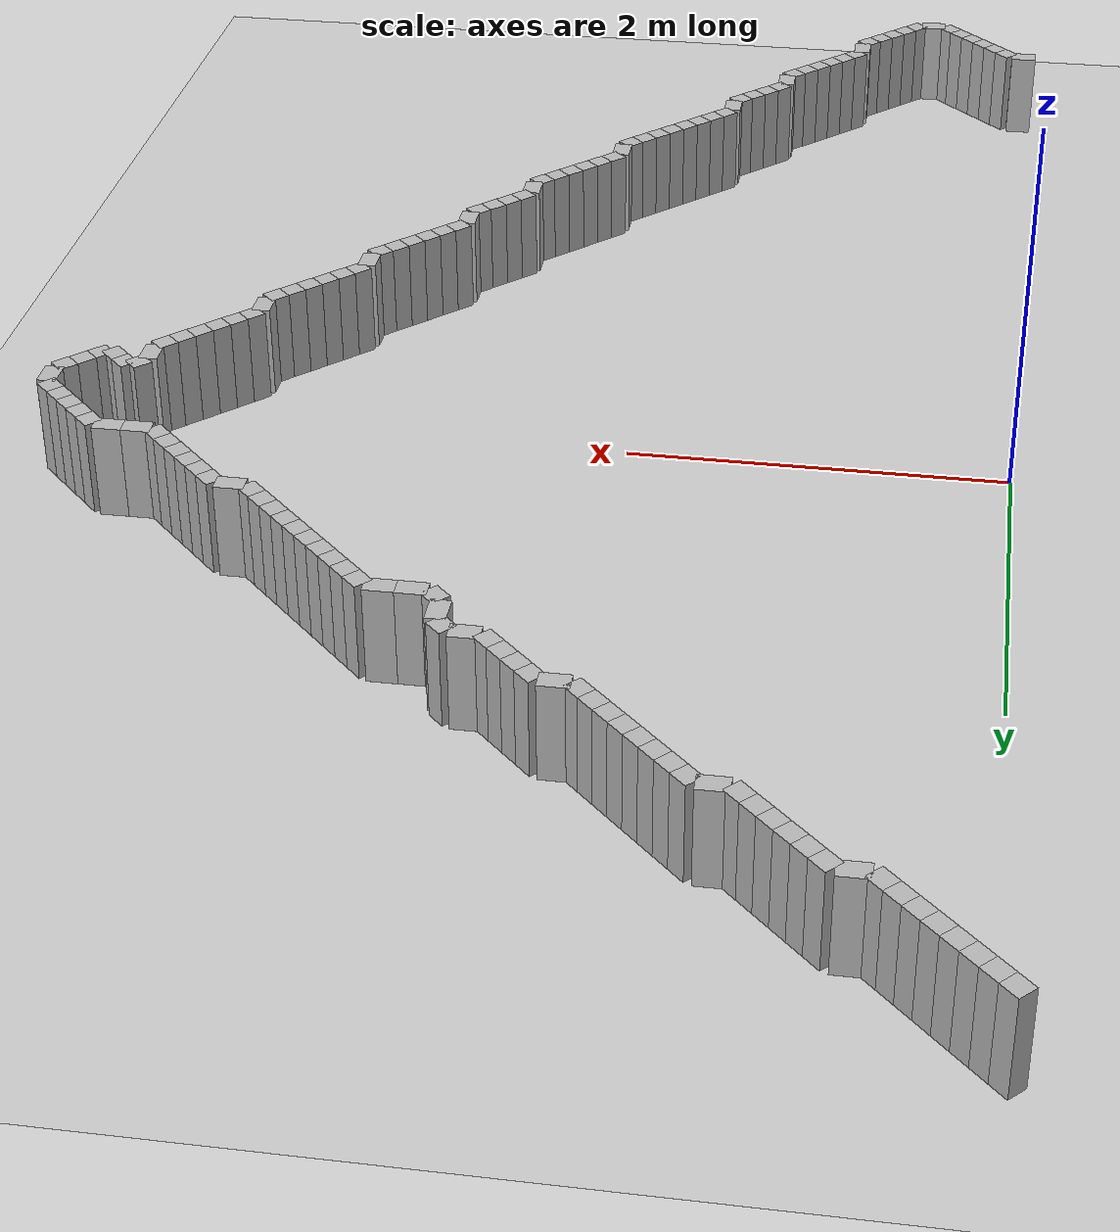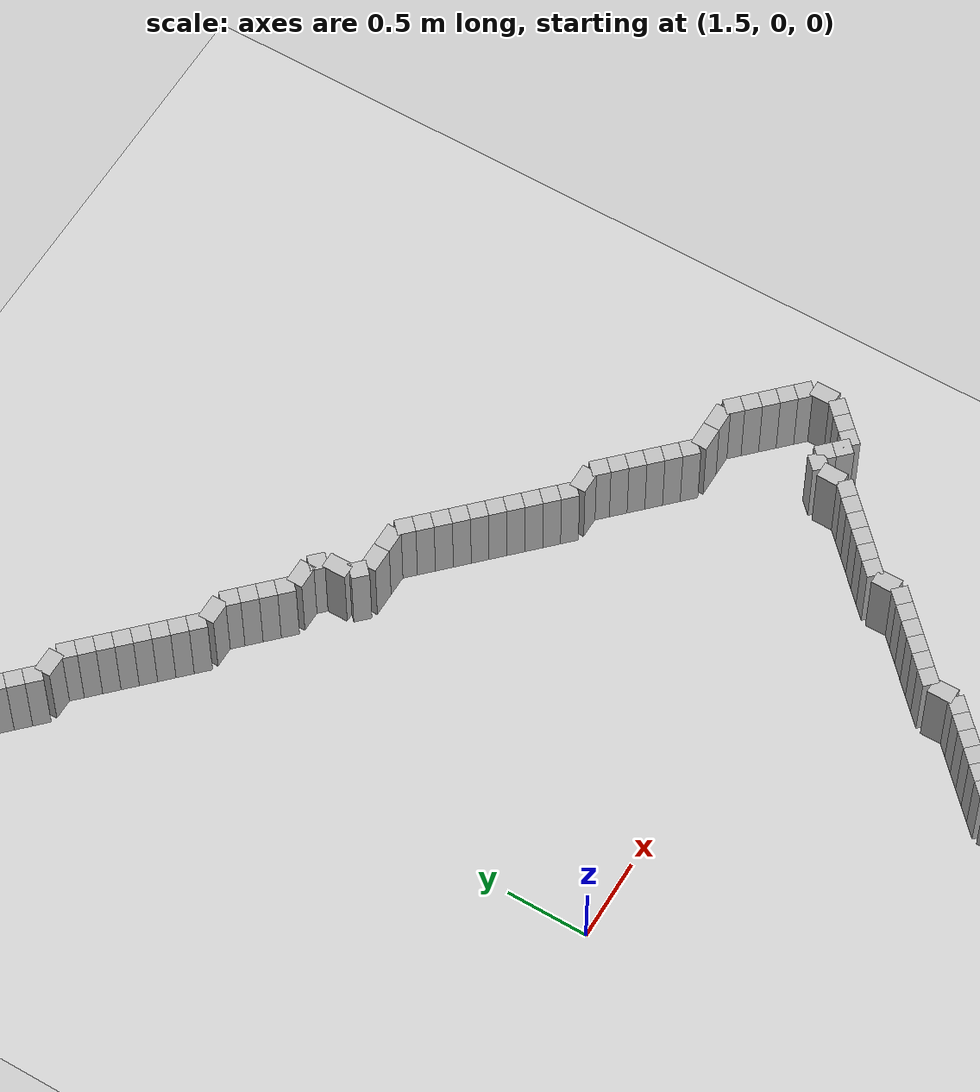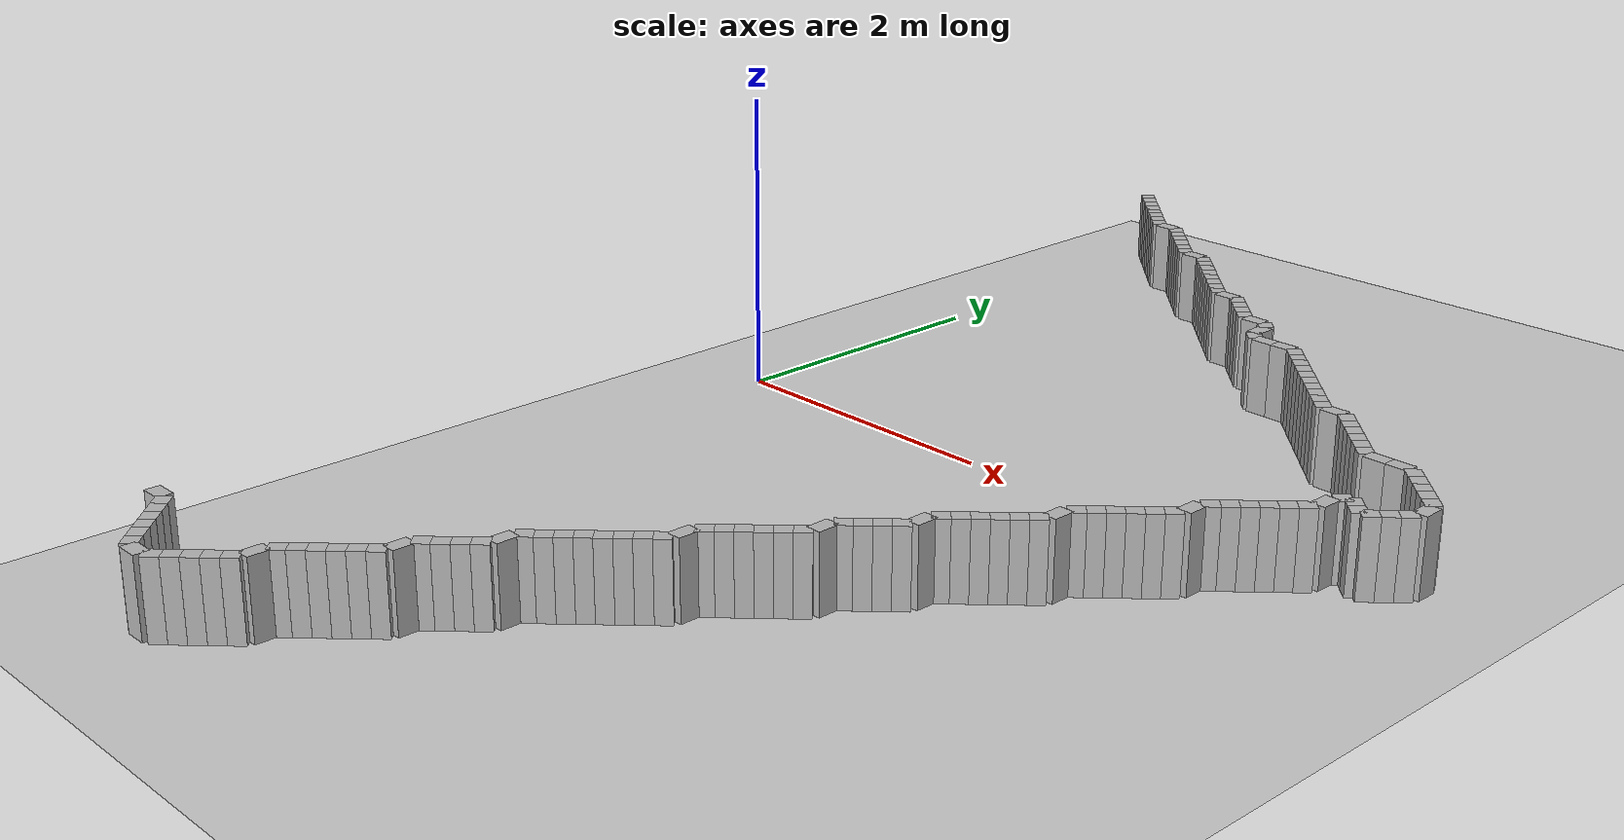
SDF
<sdf version="1.6">
 <world name="default">
  <include><uri>model://ground_plane</uri></include>
  <include><uri>model://sun</uri></include>
  <model name="wall_0">
   <static>true</static>
   <pose>0.4875 -4.9125 0 0 0 2.3562</pose>
   <link name="link">
    <visual name="vis"><geometry><box><size>0.1061 0.10 1.00</size></box></geometry></visual>
    <collision name="col"><geometry><box><size>0.1061 0.10 1.00</size></box></geometry></collision>
   </link>
  </model>
  <model name="wall_1">
   <static>true</static>
   <pose>0.4125 -4.8375 0 0 0 2.3562</pose>
   <link name="link">
    <visual name="vis"><geometry><box><size>0.1061 0.10 1.00</size></box></geometry></visual>
    <collision name="col"><geometry><box><size>0.1061 0.10 1.00</size></box></geometry></collision>
   </link>
  </model>
  <model name="wall_2">
   <static>true</static>
   <pose>0.3375 -4.7625 0 0 0 2.3562</pose>
   <link name="link">
    <visual name="vis"><geometry><box><size>0.1061 0.10 1.00</size></box></geometry></visual>
    <collision name="col"><geometry><box><size>0.1061 0.10 1.00</size></box></geometry></collision>
   </link>
  </model>
  <model name="wall_3">
   <static>true</static>
   <pose>0.2625 -4.6875 0 0 0 2.3562</pose>
   <link name="link">
    <visual name="vis"><geometry><box><size>0.1061 0.10 1.00</size></box></geometry></visual>
    <collision name="col"><geometry><box><size>0.1061 0.10 1.00</size></box></geometry></collision>
   </link>
  </model>
  <model name="wall_4">
   <static>true</static>
   <pose>0.1875 -4.6125 0 0 0 2.3562</pose>
   <link name="link">
    <visual name="vis"><geometry><box><size>0.1061 0.10 1.00</size></box></geometry></visual>
    <collision name="col"><geometry><box><size>0.1061 0.10 1.00</size></box></geometry></collision>
   </link>
  </model>
  <model name="wall_5">
   <static>true</static>
   <pose>0.1125 -4.5375 0 0 0 2.3562</pose>
   <link name="link">
    <visual name="vis"><geometry><box><size>0.1061 0.10 1.00</size></box></geometry></visual>
    <collision name="col"><geometry><box><size>0.1061 0.10 1.00</size></box></geometry></collision>
   </link>
  </model>
  <model name="wall_6">
   <static>true</static>
   <pose>0.0000 -4.5000 0 0 0 3.1416</pose>
   <link name="link">
    <visual name="vis"><geometry><box><size>0.1500 0.10 1.00</size></box></geometry></visual>
    <collision name="col"><geometry><box><size>0.1500 0.10 1.00</size></box></geometry></collision>
   </link>
  </model>
  <model name="wall_137">
   <static>true</static>
   <pose>-0.0375 4.3125 0 0 0 -0.7854</pose>
   <link name="link">
    <visual name="vis"><geometry><box><size>0.1061 0.10 1.00</size></box></geometry></visual>
    <collision name="col"><geometry><box><size>0.1061 0.10 1.00</size></box></geometry></collision>
   </link>
  </model>
  <model name="wall_138">
   <static>true</static>
   <pose>0.0375 4.2375 0 0 0 -0.7854</pose>
   <link name="link">
    <visual name="vis"><geometry><box><size>0.1061 0.10 1.00</size></box></geometry></visual>
    <collision name="col"><geometry><box><size>0.1061 0.10 1.00</size></box></geometry></collision>
   </link>
  </model>
  <model name="wall_139">
   <static>true</static>
   <pose>0.1125 4.1625 0 0 0 -0.7854</pose>
   <link name="link">
    <visual name="vis"><geometry><box><size>0.1061 0.10 1.00</size></box></geometry></visual>
    <collision name="col"><geometry><box><size>0.1061 0.10 1.00</size></box></geometry></collision>
   </link>
  </model>
  <model name="wall_140">
   <static>true</static>
   <pose>0.1875 4.0875 0 0 0 -0.7854</pose>
   <link name="link">
    <visual name="vis"><geometry><box><size>0.1061 0.10 1.00</size></box></geometry></visual>
    <collision name="col"><geometry><box><size>0.1061 0.10 1.00</size></box></geometry></collision>
   </link>
  </model>
  <model name="wall_141">
   <static>true</static>
   <pose>0.2625 4.0125 0 0 0 -0.7854</pose>
   <link name="link">
    <visual name="vis"><geometry><box><size>0.1061 0.10 1.00</size></box></geometry></visual>
    <collision name="col"><geometry><box><size>0.1061 0.10 1.00</size></box></geometry></collision>
   </link>
  </model>
  <model name="wall_142">
   <static>true</static>
   <pose>0.3375 3.9375 0 0 0 -0.7854</pose>
   <link name="link">
    <visual name="vis"><geometry><box><size>0.1061 0.10 1.00</size></box></geometry></visual>
    <collision name="col"><geometry><box><size>0.1061 0.10 1.00</size></box></geometry></collision>
   </link>
  </model>
  <model name="wall_143">
   <static>true</static>
   <pose>0.4125 3.8625 0 0 0 -0.7854</pose>
   <link name="link">
    <visual name="vis"><geometry><box><size>0.1061 0.10 1.00</size></box></geometry></visual>
    <collision name="col"><geometry><box><size>0.1061 0.10 1.00</size></box></geometry></collision>
   </link>
  </model>
  <model name="wall_144">
   <static>true</static>
   <pose>0.4875 3.7875 0 0 0 -0.7854</pose>
   <link name="link">
    <visual name="vis"><geometry><box><size>0.1061 0.10 1.00</size></box></geometry></visual>
    <collision name="col"><geometry><box><size>0.1061 0.10 1.00</size></box></geometry></collision>
   </link>
  </model>
  <model name="wall_145">
   <static>true</static>
   <pose>0.6000 3.7500 0 0 0 0.0000</pose>
   <link name="link">
    <visual name="vis"><geometry><box><size>0.1500 0.10 1.00</size></box></geometry></visual>
    <collision name="col"><geometry><box><size>0.1500 0.10 1.00</size></box></geometry></collision>
   </link>
  </model>
  <model name="wall_146">
   <static>true</static>
   <pose>0.7125 3.7125 0 0 0 -0.7854</pose>
   <link name="link">
    <visual name="vis"><geometry><box><size>0.1061 0.10 1.00</size></box></geometry></visual>
    <collision name="col"><geometry><box><size>0.1061 0.10 1.00</size></box></geometry></collision>
   </link>
  </model>
  <model name="wall_147">
   <static>true</static>
   <pose>0.7875 3.6375 0 0 0 -0.7854</pose>
   <link name="link">
    <visual name="vis"><geometry><box><size>0.1061 0.10 1.00</size></box></geometry></visual>
    <collision name="col"><geometry><box><size>0.1061 0.10 1.00</size></box></geometry></collision>
   </link>
  </model>
  <model name="wall_148">
   <static>true</static>
   <pose>0.8625 3.5625 0 0 0 -0.7854</pose>
   <link name="link">
    <visual name="vis"><geometry><box><size>0.1061 0.10 1.00</size></box></geometry></visual>
    <collision name="col"><geometry><box><size>0.1061 0.10 1.00</size></box></geometry></collision>
   </link>
  </model>
  <model name="wall_149">
   <static>true</static>
   <pose>0.9375 3.4875 0 0 0 -0.7854</pose>
   <link name="link">
    <visual name="vis"><geometry><box><size>0.1061 0.10 1.00</size></box></geometry></visual>
    <collision name="col"><geometry><box><size>0.1061 0.10 1.00</size></box></geometry></collision>
   </link>
  </model>
  <model name="wall_150">
   <static>true</static>
   <pose>1.0125 3.4125 0 0 0 -0.7854</pose>
   <link name="link">
    <visual name="vis"><geometry><box><size>0.1061 0.10 1.00</size></box></geometry></visual>
    <collision name="col"><geometry><box><size>0.1061 0.10 1.00</size></box></geometry></collision>
   </link>
  </model>
  <model name="wall_151">
   <static>true</static>
   <pose>1.0875 3.3375 0 0 0 -0.7854</pose>
   <link name="link">
    <visual name="vis"><geometry><box><size>0.1061 0.10 1.00</size></box></geometry></visual>
    <collision name="col"><geometry><box><size>0.1061 0.10 1.00</size></box></geometry></collision>
   </link>
  </model>
  <model name="wall_152">
   <static>true</static>
   <pose>1.2000 3.3000 0 0 0 0.0000</pose>
   <link name="link">
    <visual name="vis"><geometry><box><size>0.1500 0.10 1.00</size></box></geometry></visual>
    <collision name="col"><geometry><box><size>0.1500 0.10 1.00</size></box></geometry></collision>
   </link>
  </model>
  <model name="wall_153">
   <static>true</static>
   <pose>1.3125 3.2625 0 0 0 -0.7854</pose>
   <link name="link">
    <visual name="vis"><geometry><box><size>0.1061 0.10 1.00</size></box></geometry></visual>
    <collision name="col"><geometry><box><size>0.1061 0.10 1.00</size></box></geometry></collision>
   </link>
  </model>
  <model name="wall_154">
   <static>true</static>
   <pose>1.3875 3.1875 0 0 0 -0.7854</pose>
   <link name="link">
    <visual name="vis"><geometry><box><size>0.1061 0.10 1.00</size></box></geometry></visual>
    <collision name="col"><geometry><box><size>0.1061 0.10 1.00</size></box></geometry></collision>
   </link>
  </model>
  <model name="wall_155">
   <static>true</static>
   <pose>1.4625 3.1125 0 0 0 -0.7854</pose>
   <link name="link">
    <visual name="vis"><geometry><box><size>0.1061 0.10 1.00</size></box></geometry></visual>
    <collision name="col"><geometry><box><size>0.1061 0.10 1.00</size></box></geometry></collision>
   </link>
  </model>
  <model name="wall_156">
   <static>true</static>
   <pose>1.5375 3.0375 0 0 0 -0.7854</pose>
   <link name="link">
    <visual name="vis"><geometry><box><size>0.1061 0.10 1.00</size></box></geometry></visual>
    <collision name="col"><geometry><box><size>0.1061 0.10 1.00</size></box></geometry></collision>
   </link>
  </model>
  <model name="wall_157">
   <static>true</static>
   <pose>1.6125 2.9625 0 0 0 -0.7854</pose>
   <link name="link">
    <visual name="vis"><geometry><box><size>0.1061 0.10 1.00</size></box></geometry></visual>
    <collision name="col"><geometry><box><size>0.1061 0.10 1.00</size></box></geometry></collision>
   </link>
  </model>
  <model name="wall_158">
   <static>true</static>
   <pose>1.6875 2.8875 0 0 0 -0.7854</pose>
   <link name="link">
    <visual name="vis"><geometry><box><size>0.1061 0.10 1.00</size></box></geometry></visual>
    <collision name="col"><geometry><box><size>0.1061 0.10 1.00</size></box></geometry></collision>
   </link>
  </model>
  <model name="wall_159">
   <static>true</static>
   <pose>1.7625 2.8125 0 0 0 -0.7854</pose>
   <link name="link">
    <visual name="vis"><geometry><box><size>0.1061 0.10 1.00</size></box></geometry></visual>
    <collision name="col"><geometry><box><size>0.1061 0.10 1.00</size></box></geometry></collision>
   </link>
  </model>
  <model name="wall_160">
   <static>true</static>
   <pose>1.8375 2.7375 0 0 0 -0.7854</pose>
   <link name="link">
    <visual name="vis"><geometry><box><size>0.1061 0.10 1.00</size></box></geometry></visual>
    <collision name="col"><geometry><box><size>0.1061 0.10 1.00</size></box></geometry></collision>
   </link>
  </model>
  <model name="wall_161">
   <static>true</static>
   <pose>1.9500 2.7000 0 0 0 0.0000</pose>
   <link name="link">
    <visual name="vis"><geometry><box><size>0.1500 0.10 1.00</size></box></geometry></visual>
    <collision name="col"><geometry><box><size>0.1500 0.10 1.00</size></box></geometry></collision>
   </link>
  </model>
  <model name="wall_162">
   <static>true</static>
   <pose>2.0625 2.6625 0 0 0 -0.7854</pose>
   <link name="link">
    <visual name="vis"><geometry><box><size>0.1061 0.10 1.00</size></box></geometry></visual>
    <collision name="col"><geometry><box><size>0.1061 0.10 1.00</size></box></geometry></collision>
   </link>
  </model>
  <model name="wall_163">
   <static>true</static>
   <pose>2.1375 2.5875 0 0 0 -0.7854</pose>
   <link name="link">
    <visual name="vis"><geometry><box><size>0.1061 0.10 1.00</size></box></geometry></visual>
    <collision name="col"><geometry><box><size>0.1061 0.10 1.00</size></box></geometry></collision>
   </link>
  </model>
  <model name="wall_164">
   <static>true</static>
   <pose>2.2125 2.5125 0 0 0 -0.7854</pose>
   <link name="link">
    <visual name="vis"><geometry><box><size>0.1061 0.10 1.00</size></box></geometry></visual>
    <collision name="col"><geometry><box><size>0.1061 0.10 1.00</size></box></geometry></collision>
   </link>
  </model>
  <model name="wall_165">
   <static>true</static>
   <pose>2.2875 2.4375 0 0 0 -0.7854</pose>
   <link name="link">
    <visual name="vis"><geometry><box><size>0.1061 0.10 1.00</size></box></geometry></visual>
    <collision name="col"><geometry><box><size>0.1061 0.10 1.00</size></box></geometry></collision>
   </link>
  </model>
  <model name="wall_166">
   <static>true</static>
   <pose>2.4000 2.4000 0 0 0 0.0000</pose>
   <link name="link">
    <visual name="vis"><geometry><box><size>0.1500 0.10 1.00</size></box></geometry></visual>
    <collision name="col"><geometry><box><size>0.1500 0.10 1.00</size></box></geometry></collision>
   </link>
  </model>
  <model name="wall_167">
   <static>true</static>
   <pose>2.5125 2.3625 0 0 0 -0.7854</pose>
   <link name="link">
    <visual name="vis"><geometry><box><size>0.1061 0.10 1.00</size></box></geometry></visual>
    <collision name="col"><geometry><box><size>0.1061 0.10 1.00</size></box></geometry></collision>
   </link>
  </model>
  <model name="wall_168">
   <static>true</static>
   <pose>2.5500 2.2500 0 0 0 -1.5708</pose>
   <link name="link">
    <visual name="vis"><geometry><box><size>0.1500 0.10 1.00</size></box></geometry></visual>
    <collision name="col"><geometry><box><size>0.1500 0.10 1.00</size></box></geometry></collision>
   </link>
  </model>
  <model name="wall_169">
   <static>true</static>
   <pose>2.5875 2.1375 0 0 0 -0.7854</pose>
   <link name="link">
    <visual name="vis"><geometry><box><size>0.1061 0.10 1.00</size></box></geometry></visual>
    <collision name="col"><geometry><box><size>0.1061 0.10 1.00</size></box></geometry></collision>
   </link>
  </model>
  <model name="wall_170">
   <static>true</static>
   <pose>2.7000 2.1000 0 0 0 0.0000</pose>
   <link name="link">
    <visual name="vis"><geometry><box><size>0.1500 0.10 1.00</size></box></geometry></visual>
    <collision name="col"><geometry><box><size>0.1500 0.10 1.00</size></box></geometry></collision>
   </link>
  </model>
  <model name="wall_171">
   <static>true</static>
   <pose>2.8500 2.1000 0 0 0 0.0000</pose>
   <link name="link">
    <visual name="vis"><geometry><box><size>0.1500 0.10 1.00</size></box></geometry></visual>
    <collision name="col"><geometry><box><size>0.1500 0.10 1.00</size></box></geometry></collision>
   </link>
  </model>
  <model name="wall_172">
   <static>true</static>
   <pose>2.9625 2.0625 0 0 0 -0.7854</pose>
   <link name="link">
    <visual name="vis"><geometry><box><size>0.1061 0.10 1.00</size></box></geometry></visual>
    <collision name="col"><geometry><box><size>0.1061 0.10 1.00</size></box></geometry></collision>
   </link>
  </model>
  <model name="wall_173">
   <static>true</static>
   <pose>3.0375 1.9875 0 0 0 -0.7854</pose>
   <link name="link">
    <visual name="vis"><geometry><box><size>0.1061 0.10 1.00</size></box></geometry></visual>
    <collision name="col"><geometry><box><size>0.1061 0.10 1.00</size></box></geometry></collision>
   </link>
  </model>
  <model name="wall_174">
   <static>true</static>
   <pose>3.1125 1.9125 0 0 0 -0.7854</pose>
   <link name="link">
    <visual name="vis"><geometry><box><size>0.1061 0.10 1.00</size></box></geometry></visual>
    <collision name="col"><geometry><box><size>0.1061 0.10 1.00</size></box></geometry></collision>
   </link>
  </model>
  <model name="wall_175">
   <static>true</static>
   <pose>3.1875 1.8375 0 0 0 -0.7854</pose>
   <link name="link">
    <visual name="vis"><geometry><box><size>0.1061 0.10 1.00</size></box></geometry></visual>
    <collision name="col"><geometry><box><size>0.1061 0.10 1.00</size></box></geometry></collision>
   </link>
  </model>
  <model name="wall_176">
   <static>true</static>
   <pose>3.2625 1.7625 0 0 0 -0.7854</pose>
   <link name="link">
    <visual name="vis"><geometry><box><size>0.1061 0.10 1.00</size></box></geometry></visual>
    <collision name="col"><geometry><box><size>0.1061 0.10 1.00</size></box></geometry></collision>
   </link>
  </model>
  <model name="wall_177">
   <static>true</static>
   <pose>3.3375 1.6875 0 0 0 -0.7854</pose>
   <link name="link">
    <visual name="vis"><geometry><box><size>0.1061 0.10 1.00</size></box></geometry></visual>
    <collision name="col"><geometry><box><size>0.1061 0.10 1.00</size></box></geometry></collision>
   </link>
  </model>
  <model name="wall_178">
   <static>true</static>
   <pose>3.4125 1.6125 0 0 0 -0.7854</pose>
   <link name="link">
    <visual name="vis"><geometry><box><size>0.1061 0.10 1.00</size></box></geometry></visual>
    <collision name="col"><geometry><box><size>0.1061 0.10 1.00</size></box></geometry></collision>
   </link>
  </model>
  <model name="wall_179">
   <static>true</static>
   <pose>3.4875 1.5375 0 0 0 -0.7854</pose>
   <link name="link">
    <visual name="vis"><geometry><box><size>0.1061 0.10 1.00</size></box></geometry></visual>
    <collision name="col"><geometry><box><size>0.1061 0.10 1.00</size></box></geometry></collision>
   </link>
  </model>
  <model name="wall_180">
   <static>true</static>
   <pose>3.5625 1.4625 0 0 0 -0.7854</pose>
   <link name="link">
    <visual name="vis"><geometry><box><size>0.1061 0.10 1.00</size></box></geometry></visual>
    <collision name="col"><geometry><box><size>0.1061 0.10 1.00</size></box></geometry></collision>
   </link>
  </model>
  <model name="wall_181">
   <static>true</static>
   <pose>3.6375 1.3875 0 0 0 -0.7854</pose>
   <link name="link">
    <visual name="vis"><geometry><box><size>0.1061 0.10 1.00</size></box></geometry></visual>
    <collision name="col"><geometry><box><size>0.1061 0.10 1.00</size></box></geometry></collision>
   </link>
  </model>
  <model name="wall_182">
   <static>true</static>
   <pose>3.7500 1.3500 0 0 0 0.0000</pose>
   <link name="link">
    <visual name="vis"><geometry><box><size>0.1500 0.10 1.00</size></box></geometry></visual>
    <collision name="col"><geometry><box><size>0.1500 0.10 1.00</size></box></geometry></collision>
   </link>
  </model>
  <model name="wall_183">
   <static>true</static>
   <pose>3.8625 1.3125 0 0 0 -0.7854</pose>
   <link name="link">
    <visual name="vis"><geometry><box><size>0.1061 0.10 1.00</size></box></geometry></visual>
    <collision name="col"><geometry><box><size>0.1061 0.10 1.00</size></box></geometry></collision>
   </link>
  </model>
  <model name="wall_184">
   <static>true</static>
   <pose>3.9375 1.2375 0 0 0 -0.7854</pose>
   <link name="link">
    <visual name="vis"><geometry><box><size>0.1061 0.10 1.00</size></box></geometry></visual>
    <collision name="col"><geometry><box><size>0.1061 0.10 1.00</size></box></geometry></collision>
   </link>
  </model>
  <model name="wall_185">
   <static>true</static>
   <pose>4.0125 1.1625 0 0 0 -0.7854</pose>
   <link name="link">
    <visual name="vis"><geometry><box><size>0.1061 0.10 1.00</size></box></geometry></visual>
    <collision name="col"><geometry><box><size>0.1061 0.10 1.00</size></box></geometry></collision>
   </link>
  </model>
  <model name="wall_186">
   <static>true</static>
   <pose>4.0875 1.0875 0 0 0 -0.7854</pose>
   <link name="link">
    <visual name="vis"><geometry><box><size>0.1061 0.10 1.00</size></box></geometry></visual>
    <collision name="col"><geometry><box><size>0.1061 0.10 1.00</size></box></geometry></collision>
   </link>
  </model>
  <model name="wall_187">
   <static>true</static>
   <pose>4.1625 1.0125 0 0 0 -0.7854</pose>
   <link name="link">
    <visual name="vis"><geometry><box><size>0.1061 0.10 1.00</size></box></geometry></visual>
    <collision name="col"><geometry><box><size>0.1061 0.10 1.00</size></box></geometry></collision>
   </link>
  </model>
  <model name="wall_188">
   <static>true</static>
   <pose>4.2375 0.9375 0 0 0 -0.7854</pose>
   <link name="link">
    <visual name="vis"><geometry><box><size>0.1061 0.10 1.00</size></box></geometry></visual>
    <collision name="col"><geometry><box><size>0.1061 0.10 1.00</size></box></geometry></collision>
   </link>
  </model>
  <model name="wall_189">
   <static>true</static>
   <pose>4.3500 0.9000 0 0 0 0.0000</pose>
   <link name="link">
    <visual name="vis"><geometry><box><size>0.1500 0.10 1.00</size></box></geometry></visual>
    <collision name="col"><geometry><box><size>0.1500 0.10 1.00</size></box></geometry></collision>
   </link>
  </model>
  <model name="wall_190">
   <static>true</static>
   <pose>4.5000 0.9000 0 0 0 0.0000</pose>
   <link name="link">
    <visual name="vis"><geometry><box><size>0.1500 0.10 1.00</size></box></geometry></visual>
    <collision name="col"><geometry><box><size>0.1500 0.10 1.00</size></box></geometry></collision>
   </link>
  </model>
  <model name="wall_191">
   <static>true</static>
   <pose>4.6125 0.8625 0 0 0 -0.7854</pose>
   <link name="link">
    <visual name="vis"><geometry><box><size>0.1061 0.10 1.00</size></box></geometry></visual>
    <collision name="col"><geometry><box><size>0.1061 0.10 1.00</size></box></geometry></collision>
   </link>
  </model>
  <model name="wall_192">
   <static>true</static>
   <pose>4.6875 0.7875 0 0 0 -0.7854</pose>
   <link name="link">
    <visual name="vis"><geometry><box><size>0.1061 0.10 1.00</size></box></geometry></visual>
    <collision name="col"><geometry><box><size>0.1061 0.10 1.00</size></box></geometry></collision>
   </link>
  </model>
  <model name="wall_193">
   <static>true</static>
   <pose>4.7625 0.7125 0 0 0 -0.7854</pose>
   <link name="link">
    <visual name="vis"><geometry><box><size>0.1061 0.10 1.00</size></box></geometry></visual>
    <collision name="col"><geometry><box><size>0.1061 0.10 1.00</size></box></geometry></collision>
   </link>
  </model>
  <model name="wall_194">
   <static>true</static>
   <pose>4.8375 0.6375 0 0 0 -0.7854</pose>
   <link name="link">
    <visual name="vis"><geometry><box><size>0.1061 0.10 1.00</size></box></geometry></visual>
    <collision name="col"><geometry><box><size>0.1061 0.10 1.00</size></box></geometry></collision>
   </link>
  </model>
  <model name="wall_195">
   <static>true</static>
   <pose>4.9125 0.5625 0 0 0 -0.7854</pose>
   <link name="link">
    <visual name="vis"><geometry><box><size>0.1061 0.10 1.00</size></box></geometry></visual>
    <collision name="col"><geometry><box><size>0.1061 0.10 1.00</size></box></geometry></collision>
   </link>
  </model>
  <model name="wall_196">
   <static>true</static>
   <pose>4.9500 0.4500 0 0 0 -1.5708</pose>
   <link name="link">
    <visual name="vis"><geometry><box><size>0.1500 0.10 1.00</size></box></geometry></visual>
    <collision name="col"><geometry><box><size>0.1500 0.10 1.00</size></box></geometry></collision>
   </link>
  </model>
  <model name="wall_197">
   <static>true</static>
   <pose>4.9125 0.3375 0 0 0 -2.3562</pose>
   <link name="link">
    <visual name="vis"><geometry><box><size>0.1061 0.10 1.00</size></box></geometry></visual>
    <collision name="col"><geometry><box><size>0.1061 0.10 1.00</size></box></geometry></collision>
   </link>
  </model>
  <model name="wall_198">
   <static>true</static>
   <pose>4.8375 0.2625 0 0 0 -2.3562</pose>
   <link name="link">
    <visual name="vis"><geometry><box><size>0.1061 0.10 1.00</size></box></geometry></visual>
    <collision name="col"><geometry><box><size>0.1061 0.10 1.00</size></box></geometry></collision>
   </link>
  </model>
  <model name="wall_199">
   <static>true</static>
   <pose>4.7625 0.1875 0 0 0 -2.3562</pose>
   <link name="link">
    <visual name="vis"><geometry><box><size>0.1061 0.10 1.00</size></box></geometry></visual>
    <collision name="col"><geometry><box><size>0.1061 0.10 1.00</size></box></geometry></collision>
   </link>
  </model>
  <model name="wall_200">
   <static>true</static>
   <pose>4.6875 0.1875 0 0 0 2.3562</pose>
   <link name="link">
    <visual name="vis"><geometry><box><size>0.1061 0.10 1.00</size></box></geometry></visual>
    <collision name="col"><geometry><box><size>0.1061 0.10 1.00</size></box></geometry></collision>
   </link>
  </model>
  <model name="wall_201">
   <static>true</static>
   <pose>4.6125 0.2625 0 0 0 2.3562</pose>
   <link name="link">
    <visual name="vis"><geometry><box><size>0.1061 0.10 1.00</size></box></geometry></visual>
    <collision name="col"><geometry><box><size>0.1061 0.10 1.00</size></box></geometry></collision>
   </link>
  </model>
  <model name="wall_202">
   <static>true</static>
   <pose>4.5375 0.2625 0 0 0 -2.3562</pose>
   <link name="link">
    <visual name="vis"><geometry><box><size>0.1061 0.10 1.00</size></box></geometry></visual>
    <collision name="col"><geometry><box><size>0.1061 0.10 1.00</size></box></geometry></collision>
   </link>
  </model>
  <model name="wall_203">
   <static>true</static>
   <pose>4.5000 0.1500 0 0 0 -1.5708</pose>
   <link name="link">
    <visual name="vis"><geometry><box><size>0.1500 0.10 1.00</size></box></geometry></visual>
    <collision name="col"><geometry><box><size>0.1500 0.10 1.00</size></box></geometry></collision>
   </link>
  </model>
  <model name="wall_204">
   <static>true</static>
   <pose>4.4625 0.0375 0 0 0 -2.3562</pose>
   <link name="link">
    <visual name="vis"><geometry><box><size>0.1061 0.10 1.00</size></box></geometry></visual>
    <collision name="col"><geometry><box><size>0.1061 0.10 1.00</size></box></geometry></collision>
   </link>
  </model>
  <model name="wall_205">
   <static>true</static>
   <pose>4.3875 -0.0375 0 0 0 -2.3562</pose>
   <link name="link">
    <visual name="vis"><geometry><box><size>0.1061 0.10 1.00</size></box></geometry></visual>
    <collision name="col"><geometry><box><size>0.1061 0.10 1.00</size></box></geometry></collision>
   </link>
  </model>
  <model name="wall_206">
   <static>true</static>
   <pose>4.3125 -0.1125 0 0 0 -2.3562</pose>
   <link name="link">
    <visual name="vis"><geometry><box><size>0.1061 0.10 1.00</size></box></geometry></visual>
    <collision name="col"><geometry><box><size>0.1061 0.10 1.00</size></box></geometry></collision>
   </link>
  </model>
  <model name="wall_207">
   <static>true</static>
   <pose>4.2375 -0.1875 0 0 0 -2.3562</pose>
   <link name="link">
    <visual name="vis"><geometry><box><size>0.1061 0.10 1.00</size></box></geometry></visual>
    <collision name="col"><geometry><box><size>0.1061 0.10 1.00</size></box></geometry></collision>
   </link>
  </model>
  <model name="wall_208">
   <static>true</static>
   <pose>4.1625 -0.2625 0 0 0 -2.3562</pose>
   <link name="link">
    <visual name="vis"><geometry><box><size>0.1061 0.10 1.00</size></box></geometry></visual>
    <collision name="col"><geometry><box><size>0.1061 0.10 1.00</size></box></geometry></collision>
   </link>
  </model>
  <model name="wall_209">
   <static>true</static>
   <pose>4.0875 -0.3375 0 0 0 -2.3562</pose>
   <link name="link">
    <visual name="vis"><geometry><box><size>0.1061 0.10 1.00</size></box></geometry></visual>
    <collision name="col"><geometry><box><size>0.1061 0.10 1.00</size></box></geometry></collision>
   </link>
  </model>
  <model name="wall_210">
   <static>true</static>
   <pose>4.0500 -0.4500 0 0 0 -1.5708</pose>
   <link name="link">
    <visual name="vis"><geometry><box><size>0.1500 0.10 1.00</size></box></geometry></visual>
    <collision name="col"><geometry><box><size>0.1500 0.10 1.00</size></box></geometry></collision>
   </link>
  </model>
  <model name="wall_211">
   <static>true</static>
   <pose>4.0125 -0.5625 0 0 0 -2.3562</pose>
   <link name="link">
    <visual name="vis"><geometry><box><size>0.1061 0.10 1.00</size></box></geometry></visual>
    <collision name="col"><geometry><box><size>0.1061 0.10 1.00</size></box></geometry></collision>
   </link>
  </model>
  <model name="wall_212">
   <static>true</static>
   <pose>3.9375 -0.6375 0 0 0 -2.3562</pose>
   <link name="link">
    <visual name="vis"><geometry><box><size>0.1061 0.10 1.00</size></box></geometry></visual>
    <collision name="col"><geometry><box><size>0.1061 0.10 1.00</size></box></geometry></collision>
   </link>
  </model>
  <model name="wall_213">
   <static>true</static>
   <pose>3.8625 -0.7125 0 0 0 -2.3562</pose>
   <link name="link">
    <visual name="vis"><geometry><box><size>0.1061 0.10 1.00</size></box></geometry></visual>
    <collision name="col"><geometry><box><size>0.1061 0.10 1.00</size></box></geometry></collision>
   </link>
  </model>
  <model name="wall_214">
   <static>true</static>
   <pose>3.7875 -0.7875 0 0 0 -2.3562</pose>
   <link name="link">
    <visual name="vis"><geometry><box><size>0.1061 0.10 1.00</size></box></geometry></visual>
    <collision name="col"><geometry><box><size>0.1061 0.10 1.00</size></box></geometry></collision>
   </link>
  </model>
  <model name="wall_215">
   <static>true</static>
   <pose>3.7125 -0.8625 0 0 0 -2.3562</pose>
   <link name="link">
    <visual name="vis"><geometry><box><size>0.1061 0.10 1.00</size></box></geometry></visual>
    <collision name="col"><geometry><box><size>0.1061 0.10 1.00</size></box></geometry></collision>
   </link>
  </model>
  <model name="wall_216">
   <static>true</static>
   <pose>3.6375 -0.9375 0 0 0 -2.3562</pose>
   <link name="link">
    <visual name="vis"><geometry><box><size>0.1061 0.10 1.00</size></box></geometry></visual>
    <collision name="col"><geometry><box><size>0.1061 0.10 1.00</size></box></geometry></collision>
   </link>
  </model>
  <model name="wall_217">
   <static>true</static>
   <pose>3.6000 -1.0500 0 0 0 -1.5708</pose>
   <link name="link">
    <visual name="vis"><geometry><box><size>0.1500 0.10 1.00</size></box></geometry></visual>
    <collision name="col"><geometry><box><size>0.1500 0.10 1.00</size></box></geometry></collision>
   </link>
  </model>
  <model name="wall_218">
   <static>true</static>
   <pose>3.5625 -1.1625 0 0 0 -2.3562</pose>
   <link name="link">
    <visual name="vis"><geometry><box><size>0.1061 0.10 1.00</size></box></geometry></visual>
    <collision name="col"><geometry><box><size>0.1061 0.10 1.00</size></box></geometry></collision>
   </link>
  </model>
  <model name="wall_219">
   <static>true</static>
   <pose>3.4875 -1.2375 0 0 0 -2.3562</pose>
   <link name="link">
    <visual name="vis"><geometry><box><size>0.1061 0.10 1.00</size></box></geometry></visual>
    <collision name="col"><geometry><box><size>0.1061 0.10 1.00</size></box></geometry></collision>
   </link>
  </model>
  <model name="wall_220">
   <static>true</static>
   <pose>3.4125 -1.3125 0 0 0 -2.3562</pose>
   <link name="link">
    <visual name="vis"><geometry><box><size>0.1061 0.10 1.00</size></box></geometry></visual>
    <collision name="col"><geometry><box><size>0.1061 0.10 1.00</size></box></geometry></collision>
   </link>
  </model>
  <model name="wall_221">
   <static>true</static>
   <pose>3.3375 -1.3875 0 0 0 -2.3562</pose>
   <link name="link">
    <visual name="vis"><geometry><box><size>0.1061 0.10 1.00</size></box></geometry></visual>
    <collision name="col"><geometry><box><size>0.1061 0.10 1.00</size></box></geometry></collision>
   </link>
  </model>
  <model name="wall_222">
   <static>true</static>
   <pose>3.2625 -1.4625 0 0 0 -2.3562</pose>
   <link name="link">
    <visual name="vis"><geometry><box><size>0.1061 0.10 1.00</size></box></geometry></visual>
    <collision name="col"><geometry><box><size>0.1061 0.10 1.00</size></box></geometry></collision>
   </link>
  </model>
  <model name="wall_223">
   <static>true</static>
   <pose>3.1875 -1.5375 0 0 0 -2.3562</pose>
   <link name="link">
    <visual name="vis"><geometry><box><size>0.1061 0.10 1.00</size></box></geometry></visual>
    <collision name="col"><geometry><box><size>0.1061 0.10 1.00</size></box></geometry></collision>
   </link>
  </model>
  <model name="wall_224">
   <static>true</static>
   <pose>3.1500 -1.6500 0 0 0 -1.5708</pose>
   <link name="link">
    <visual name="vis"><geometry><box><size>0.1500 0.10 1.00</size></box></geometry></visual>
    <collision name="col"><geometry><box><size>0.1500 0.10 1.00</size></box></geometry></collision>
   </link>
  </model>
  <model name="wall_225">
   <static>true</static>
   <pose>3.1125 -1.7625 0 0 0 -2.3562</pose>
   <link name="link">
    <visual name="vis"><geometry><box><size>0.1061 0.10 1.00</size></box></geometry></visual>
    <collision name="col"><geometry><box><size>0.1061 0.10 1.00</size></box></geometry></collision>
   </link>
  </model>
  <model name="wall_226">
   <static>true</static>
   <pose>3.0375 -1.8375 0 0 0 -2.3562</pose>
   <link name="link">
    <visual name="vis"><geometry><box><size>0.1061 0.10 1.00</size></box></geometry></visual>
    <collision name="col"><geometry><box><size>0.1061 0.10 1.00</size></box></geometry></collision>
   </link>
  </model>
  <model name="wall_227">
   <static>true</static>
   <pose>2.9625 -1.9125 0 0 0 -2.3562</pose>
   <link name="link">
    <visual name="vis"><geometry><box><size>0.1061 0.10 1.00</size></box></geometry></visual>
    <collision name="col"><geometry><box><size>0.1061 0.10 1.00</size></box></geometry></collision>
   </link>
  </model>
  <model name="wall_228">
   <static>true</static>
   <pose>2.8875 -1.9875 0 0 0 -2.3562</pose>
   <link name="link">
    <visual name="vis"><geometry><box><size>0.1061 0.10 1.00</size></box></geometry></visual>
    <collision name="col"><geometry><box><size>0.1061 0.10 1.00</size></box></geometry></collision>
   </link>
  </model>
  <model name="wall_229">
   <static>true</static>
   <pose>2.8500 -2.1000 0 0 0 -1.5708</pose>
   <link name="link">
    <visual name="vis"><geometry><box><size>0.1500 0.10 1.00</size></box></geometry></visual>
    <collision name="col"><geometry><box><size>0.1500 0.10 1.00</size></box></geometry></collision>
   </link>
  </model>
  <model name="wall_230">
   <static>true</static>
   <pose>2.8125 -2.2125 0 0 0 -2.3562</pose>
   <link name="link">
    <visual name="vis"><geometry><box><size>0.1061 0.10 1.00</size></box></geometry></visual>
    <collision name="col"><geometry><box><size>0.1061 0.10 1.00</size></box></geometry></collision>
   </link>
  </model>
  <model name="wall_231">
   <static>true</static>
   <pose>2.7375 -2.2875 0 0 0 -2.3562</pose>
   <link name="link">
    <visual name="vis"><geometry><box><size>0.1061 0.10 1.00</size></box></geometry></visual>
    <collision name="col"><geometry><box><size>0.1061 0.10 1.00</size></box></geometry></collision>
   </link>
  </model>
  <model name="wall_232">
   <static>true</static>
   <pose>2.6625 -2.3625 0 0 0 -2.3562</pose>
   <link name="link">
    <visual name="vis"><geometry><box><size>0.1061 0.10 1.00</size></box></geometry></visual>
    <collision name="col"><geometry><box><size>0.1061 0.10 1.00</size></box></geometry></collision>
   </link>
  </model>
  <model name="wall_233">
   <static>true</static>
   <pose>2.5875 -2.4375 0 0 0 -2.3562</pose>
   <link name="link">
    <visual name="vis"><geometry><box><size>0.1061 0.10 1.00</size></box></geometry></visual>
    <collision name="col"><geometry><box><size>0.1061 0.10 1.00</size></box></geometry></collision>
   </link>
  </model>
  <model name="wall_234">
   <static>true</static>
   <pose>2.5125 -2.5125 0 0 0 -2.3562</pose>
   <link name="link">
    <visual name="vis"><geometry><box><size>0.1061 0.10 1.00</size></box></geometry></visual>
    <collision name="col"><geometry><box><size>0.1061 0.10 1.00</size></box></geometry></collision>
   </link>
  </model>
  <model name="wall_235">
   <static>true</static>
   <pose>2.4375 -2.5875 0 0 0 -2.3562</pose>
   <link name="link">
    <visual name="vis"><geometry><box><size>0.1061 0.10 1.00</size></box></geometry></visual>
    <collision name="col"><geometry><box><size>0.1061 0.10 1.00</size></box></geometry></collision>
   </link>
  </model>
  <model name="wall_236">
   <static>true</static>
   <pose>2.4000 -2.7000 0 0 0 -1.5708</pose>
   <link name="link">
    <visual name="vis"><geometry><box><size>0.1500 0.10 1.00</size></box></geometry></visual>
    <collision name="col"><geometry><box><size>0.1500 0.10 1.00</size></box></geometry></collision>
   </link>
  </model>
  <model name="wall_237">
   <static>true</static>
   <pose>2.3625 -2.8125 0 0 0 -2.3562</pose>
   <link name="link">
    <visual name="vis"><geometry><box><size>0.1061 0.10 1.00</size></box></geometry></visual>
    <collision name="col"><geometry><box><size>0.1061 0.10 1.00</size></box></geometry></collision>
   </link>
  </model>
  <model name="wall_238">
   <static>true</static>
   <pose>2.2875 -2.8875 0 0 0 -2.3562</pose>
   <link name="link">
    <visual name="vis"><geometry><box><size>0.1061 0.10 1.00</size></box></geometry></visual>
    <collision name="col"><geometry><box><size>0.1061 0.10 1.00</size></box></geometry></collision>
   </link>
  </model>
  <model name="wall_239">
   <static>true</static>
   <pose>2.2125 -2.9625 0 0 0 -2.3562</pose>
   <link name="link">
    <visual name="vis"><geometry><box><size>0.1061 0.10 1.00</size></box></geometry></visual>
    <collision name="col"><geometry><box><size>0.1061 0.10 1.00</size></box></geometry></collision>
   </link>
  </model>
  <model name="wall_240">
   <static>true</static>
   <pose>2.1375 -3.0375 0 0 0 -2.3562</pose>
   <link name="link">
    <visual name="vis"><geometry><box><size>0.1061 0.10 1.00</size></box></geometry></visual>
    <collision name="col"><geometry><box><size>0.1061 0.10 1.00</size></box></geometry></collision>
   </link>
  </model>
  <model name="wall_241">
   <static>true</static>
   <pose>2.0625 -3.1125 0 0 0 -2.3562</pose>
   <link name="link">
    <visual name="vis"><geometry><box><size>0.1061 0.10 1.00</size></box></geometry></visual>
    <collision name="col"><geometry><box><size>0.1061 0.10 1.00</size></box></geometry></collision>
   </link>
  </model>
  <model name="wall_242">
   <static>true</static>
   <pose>1.9875 -3.1875 0 0 0 -2.3562</pose>
   <link name="link">
    <visual name="vis"><geometry><box><size>0.1061 0.10 1.00</size></box></geometry></visual>
    <collision name="col"><geometry><box><size>0.1061 0.10 1.00</size></box></geometry></collision>
   </link>
  </model>
  <model name="wall_243">
   <static>true</static>
   <pose>1.9125 -3.2625 0 0 0 -2.3562</pose>
   <link name="link">
    <visual name="vis"><geometry><box><size>0.1061 0.10 1.00</size></box></geometry></visual>
    <collision name="col"><geometry><box><size>0.1061 0.10 1.00</size></box></geometry></collision>
   </link>
  </model>
  <model name="wall_244">
   <static>true</static>
   <pose>1.8375 -3.3375 0 0 0 -2.3562</pose>
   <link name="link">
    <visual name="vis"><geometry><box><size>0.1061 0.10 1.00</size></box></geometry></visual>
    <collision name="col"><geometry><box><size>0.1061 0.10 1.00</size></box></geometry></collision>
   </link>
  </model>
  <model name="wall_245">
   <static>true</static>
   <pose>1.8000 -3.4500 0 0 0 -1.5708</pose>
   <link name="link">
    <visual name="vis"><geometry><box><size>0.1500 0.10 1.00</size></box></geometry></visual>
    <collision name="col"><geometry><box><size>0.1500 0.10 1.00</size></box></geometry></collision>
   </link>
  </model>
  <model name="wall_246">
   <static>true</static>
   <pose>1.7625 -3.5625 0 0 0 -2.3562</pose>
   <link name="link">
    <visual name="vis"><geometry><box><size>0.1061 0.10 1.00</size></box></geometry></visual>
    <collision name="col"><geometry><box><size>0.1061 0.10 1.00</size></box></geometry></collision>
   </link>
  </model>
  <model name="wall_247">
   <static>true</static>
   <pose>1.6875 -3.6375 0 0 0 -2.3562</pose>
   <link name="link">
    <visual name="vis"><geometry><box><size>0.1061 0.10 1.00</size></box></geometry></visual>
    <collision name="col"><geometry><box><size>0.1061 0.10 1.00</size></box></geometry></collision>
   </link>
  </model>
  <model name="wall_248">
   <static>true</static>
   <pose>1.6125 -3.7125 0 0 0 -2.3562</pose>
   <link name="link">
    <visual name="vis"><geometry><box><size>0.1061 0.10 1.00</size></box></geometry></visual>
    <collision name="col"><geometry><box><size>0.1061 0.10 1.00</size></box></geometry></collision>
   </link>
  </model>
  <model name="wall_249">
   <static>true</static>
   <pose>1.5375 -3.7875 0 0 0 -2.3562</pose>
   <link name="link">
    <visual name="vis"><geometry><box><size>0.1061 0.10 1.00</size></box></geometry></visual>
    <collision name="col"><geometry><box><size>0.1061 0.10 1.00</size></box></geometry></collision>
   </link>
  </model>
  <model name="wall_250">
   <static>true</static>
   <pose>1.5000 -3.9000 0 0 0 -1.5708</pose>
   <link name="link">
    <visual name="vis"><geometry><box><size>0.1500 0.10 1.00</size></box></geometry></visual>
    <collision name="col"><geometry><box><size>0.1500 0.10 1.00</size></box></geometry></collision>
   </link>
  </model>
  <model name="wall_251">
   <static>true</static>
   <pose>1.4625 -4.0125 0 0 0 -2.3562</pose>
   <link name="link">
    <visual name="vis"><geometry><box><size>0.1061 0.10 1.00</size></box></geometry></visual>
    <collision name="col"><geometry><box><size>0.1061 0.10 1.00</size></box></geometry></collision>
   </link>
  </model>
  <model name="wall_252">
   <static>true</static>
   <pose>1.3875 -4.0875 0 0 0 -2.3562</pose>
   <link name="link">
    <visual name="vis"><geometry><box><size>0.1061 0.10 1.00</size></box></geometry></visual>
    <collision name="col"><geometry><box><size>0.1061 0.10 1.00</size></box></geometry></collision>
   </link>
  </model>
  <model name="wall_253">
   <static>true</static>
   <pose>1.3125 -4.1625 0 0 0 -2.3562</pose>
   <link name="link">
    <visual name="vis"><geometry><box><size>0.1061 0.10 1.00</size></box></geometry></visual>
    <collision name="col"><geometry><box><size>0.1061 0.10 1.00</size></box></geometry></collision>
   </link>
  </model>
  <model name="wall_254">
   <static>true</static>
   <pose>1.2375 -4.2375 0 0 0 -2.3562</pose>
   <link name="link">
    <visual name="vis"><geometry><box><size>0.1061 0.10 1.00</size></box></geometry></visual>
    <collision name="col"><geometry><box><size>0.1061 0.10 1.00</size></box></geometry></collision>
   </link>
  </model>
  <model name="wall_255">
   <static>true</static>
   <pose>1.1625 -4.3125 0 0 0 -2.3562</pose>
   <link name="link">
    <visual name="vis"><geometry><box><size>0.1061 0.10 1.00</size></box></geometry></visual>
    <collision name="col"><geometry><box><size>0.1061 0.10 1.00</size></box></geometry></collision>
   </link>
  </model>
  <model name="wall_256">
   <static>true</static>
   <pose>1.0875 -4.3875 0 0 0 -2.3562</pose>
   <link name="link">
    <visual name="vis"><geometry><box><size>0.1061 0.10 1.00</size></box></geometry></visual>
    <collision name="col"><geometry><box><size>0.1061 0.10 1.00</size></box></geometry></collision>
   </link>
  </model>
  <model name="wall_257">
   <static>true</static>
   <pose>1.0500 -4.5000 0 0 0 -1.5708</pose>
   <link name="link">
    <visual name="vis"><geometry><box><size>0.1500 0.10 1.00</size></box></geometry></visual>
    <collision name="col"><geometry><box><size>0.1500 0.10 1.00</size></box></geometry></collision>
   </link>
  </model>
  <model name="wall_258">
   <static>true</static>
   <pose>1.0125 -4.6125 0 0 0 -2.3562</pose>
   <link name="link">
    <visual name="vis"><geometry><box><size>0.1061 0.10 1.00</size></box></geometry></visual>
    <collision name="col"><geometry><box><size>0.1061 0.10 1.00</size></box></geometry></collision>
   </link>
  </model>
  <model name="wall_259">
   <static>true</static>
   <pose>0.9375 -4.6875 0 0 0 -2.3562</pose>
   <link name="link">
    <visual name="vis"><geometry><box><size>0.1061 0.10 1.00</size></box></geometry></visual>
    <collision name="col"><geometry><box><size>0.1061 0.10 1.00</size></box></geometry></collision>
   </link>
  </model>
  <model name="wall_260">
   <static>true</static>
   <pose>0.8625 -4.7625 0 0 0 -2.3562</pose>
   <link name="link">
    <visual name="vis"><geometry><box><size>0.1061 0.10 1.00</size></box></geometry></visual>
    <collision name="col"><geometry><box><size>0.1061 0.10 1.00</size></box></geometry></collision>
   </link>
  </model>
  <model name="wall_261">
   <static>true</static>
   <pose>0.7875 -4.8375 0 0 0 -2.3562</pose>
   <link name="link">
    <visual name="vis"><geometry><box><size>0.1061 0.10 1.00</size></box></geometry></visual>
    <collision name="col"><geometry><box><size>0.1061 0.10 1.00</size></box></geometry></collision>
   </link>
  </model>
  <model name="wall_262">
   <static>true</static>
   <pose>0.7125 -4.9125 0 0 0 -2.3562</pose>
   <link name="link">
    <visual name="vis"><geometry><box><size>0.1061 0.10 1.00</size></box></geometry></visual>
    <collision name="col"><geometry><box><size>0.1061 0.10 1.00</size></box></geometry></collision>
   </link>
  </model>
  <model name="wall_263">
   <static>true</static>
   <pose>0.6000 -4.9500 0 0 0 3.1416</pose>
   <link name="link">
    <visual name="vis"><geometry><box><size>0.1500 0.10 1.00</size></box></geometry></visual>
    <collision name="col"><geometry><box><size>0.1500 0.10 1.00</size></box></geometry></collision>
   </link>
  </model>
 </world>
</sdf>
